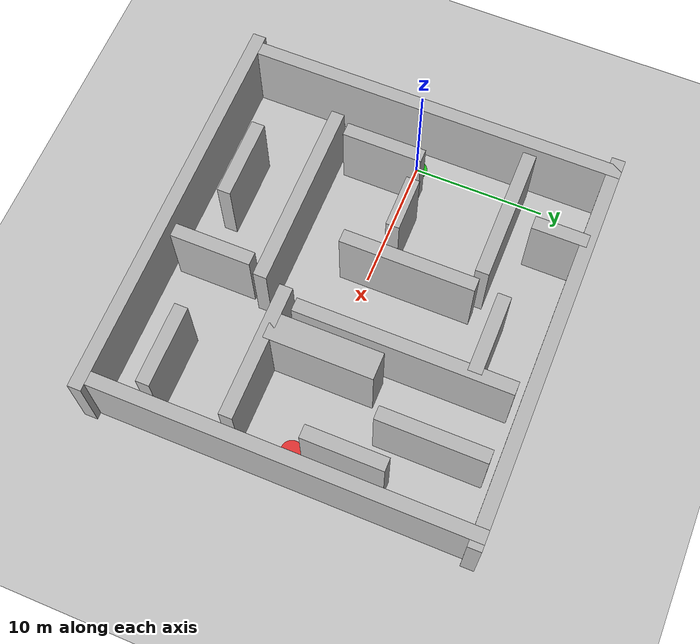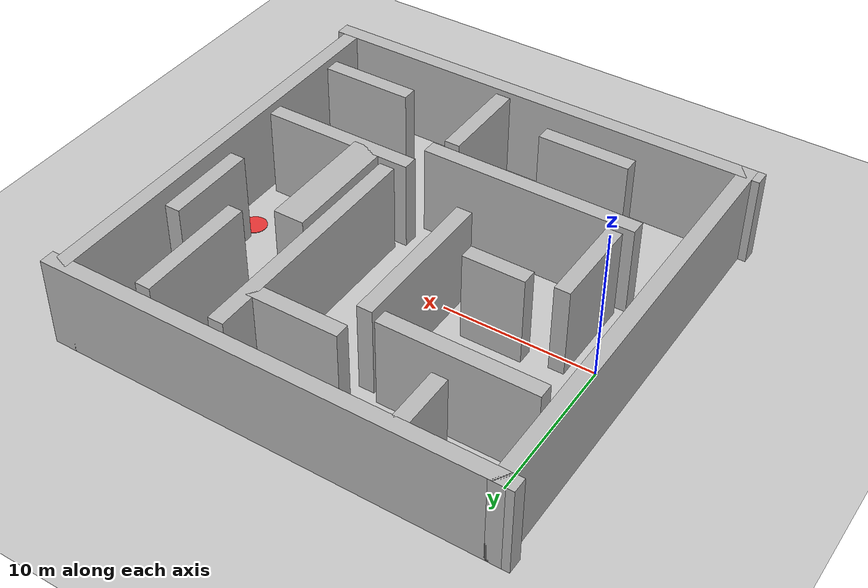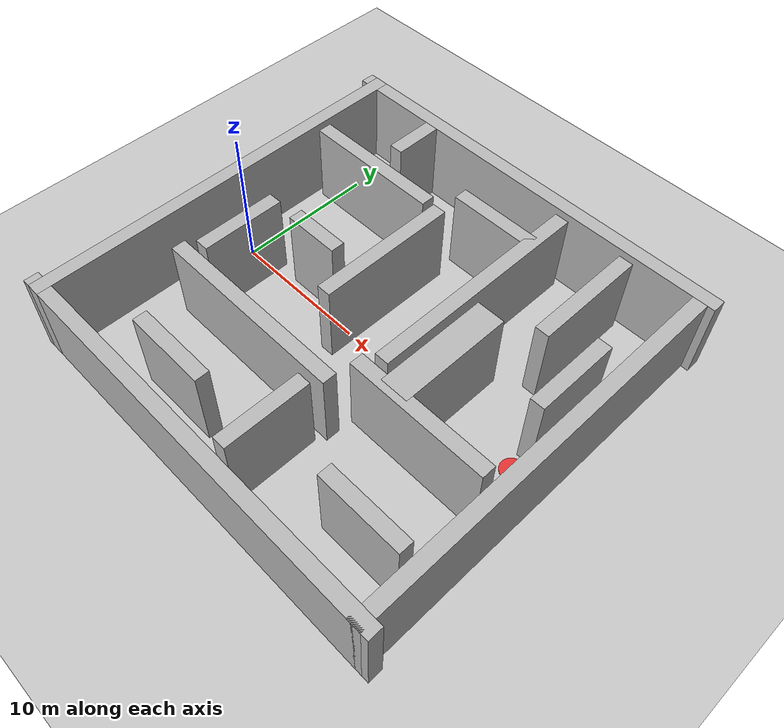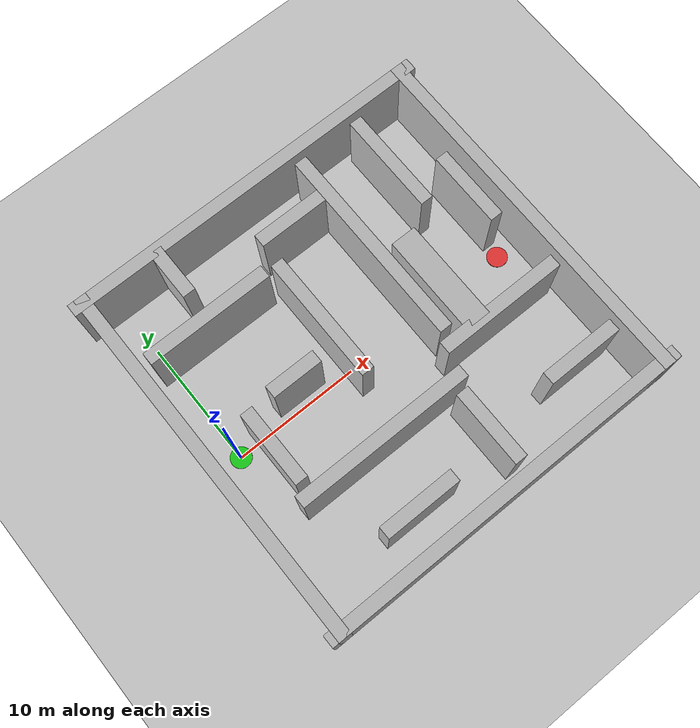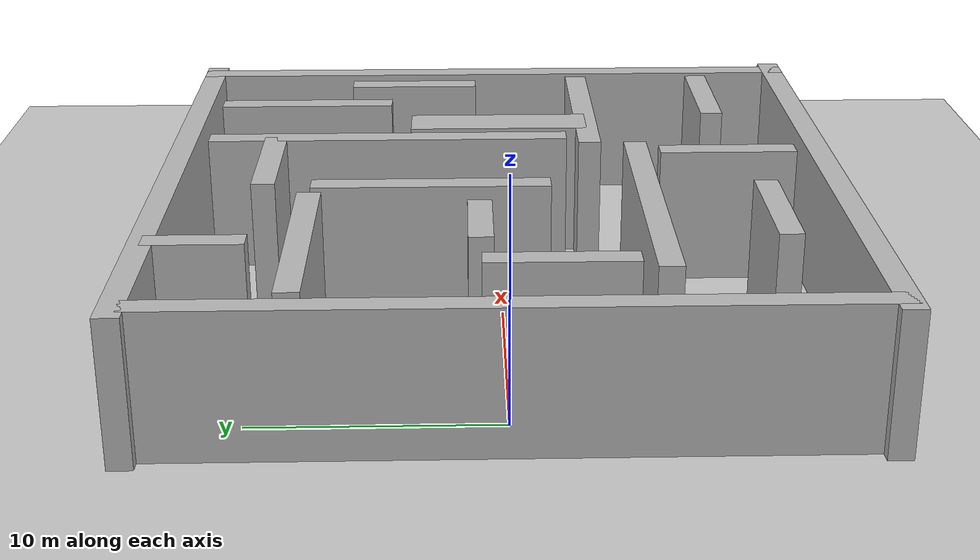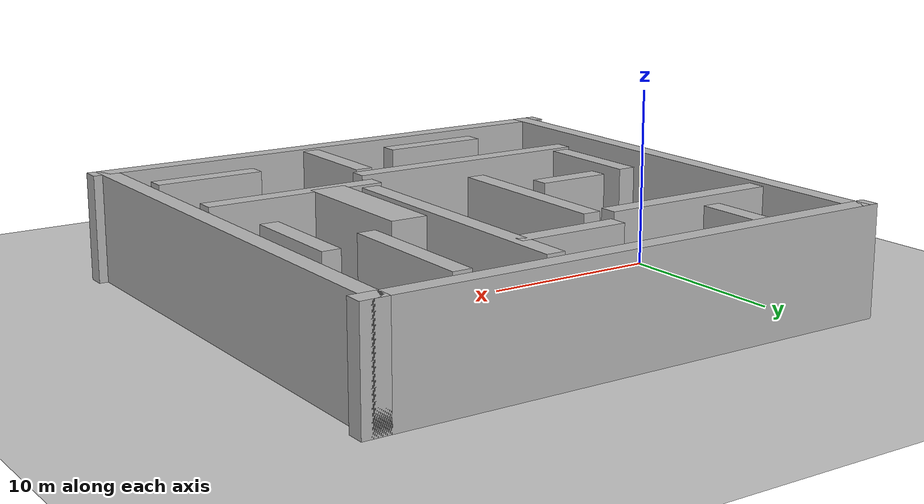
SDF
<?xml version="1.0" encoding="UTF-8"?>
<sdf version="1.9">
  <world name="maze">
    <physics type="ode">
      <max_step_size>0.01</max_step_size>
      <real_time_factor>1.0</real_time_factor>
      <real_time_update_rate>100</real_time_update_rate>
    </physics>
    <gravity>0 0 -9.8</gravity>
    <magnetic_field>6e-06 2.3e-05 -4.2e-05</magnetic_field>
    <atmosphere type="adiabatic"/>

    <scene>
      <grid>false</grid>
      <ambient>0.45 0.45 0.45 1</ambient>
      <background>0.7 0.7 0.7 1</background>
      <shadows>false</shadows>
    </scene>

    <light name="sun" type="directional">
      <pose>0 0 300 0 0 0</pose>
      <cast_shadows>true</cast_shadows>
      <intensity>1.0</intensity>
      <direction>0.2 0.5 -0.84</direction>
      <diffuse>0.9 0.9 0.9 1</diffuse>
      <specular>0.2 0.2 0.2 1</specular>
      <attenuation>
        <range>2000</range>
        <constant>1</constant>
        <linear>0</linear>
        <quadratic>0</quadratic>
      </attenuation>
    </light>

    <spherical_coordinates>
      <surface_model>EARTH_WGS84</surface_model>
      <world_frame_orientation>ENU</world_frame_orientation>
      <latitude_deg>47.397971057728974</latitude_deg>
      <longitude_deg>8.546163739800146</longitude_deg>
      <elevation>0</elevation>
    </spherical_coordinates>

    <model name="ground_plane">
      <static>true</static>
      <link name="link">
        <collision name="collision">
          <geometry>
            <plane>
              <normal>0 0 1</normal>
              <size>120 120</size>
            </plane>
          </geometry>
        </collision>
        <visual name="visual">
          <geometry>
            <plane>
              <normal>0 0 1</normal>
              <size>120 120</size>
            </plane>
          </geometry>
          <material>
            <ambient>0.78 0.78 0.78 1</ambient>
            <diffuse>0.78 0.78 0.78 1</diffuse>
            <specular>0.2 0.2 0.2 1</specular>
          </material>
        </visual>
      </link>
    </model>

    <!-- Start marker -->
    <model name="start_marker">
      <static>true</static>
      <pose>0 0 0.02 0 0 0</pose>
      <link name="link">
        <visual name="visual">
          <geometry>
            <cylinder>
              <radius>0.8</radius>
              <length>0.04</length>
            </cylinder>
          </geometry>
          <material>
            <ambient>0.1 0.8 0.1 1</ambient>
            <diffuse>0.1 0.8 0.1 1</diffuse>
          </material>
        </visual>
      </link>
    </model>

    <!-- Goal marker -->
    <model name="goal_marker">
      <static>true</static>
      <pose>24 0 0.02 0 0 0</pose>
      <link name="link">
        <visual name="visual">
          <geometry>
            <cylinder>
              <radius>0.8</radius>
              <length>0.04</length>
            </cylinder>
          </geometry>
          <material>
            <ambient>0.9 0.2 0.2 1</ambient>
            <diffuse>0.9 0.2 0.2 1</diffuse>
          </material>
        </visual>
      </link>
    </model>

    <!-- Maze walls (all static boxes, 6 m high) -->
    <!-- Outer boundary -->
    <model name="wall_outer_n">
      <static>true</static>
      <pose>12 14 3 0 0 0</pose>
      <link name="link"><collision name="c"><geometry><box><size>30 1 6</size></box></geometry></collision><visual name="v"><geometry><box><size>30 1 6</size></box></geometry></visual></link>
    </model>
    <model name="wall_outer_s">
      <static>true</static>
      <pose>12 -14 3 0 0 0</pose>
      <link name="link"><collision name="c"><geometry><box><size>30 1 6</size></box></geometry></collision><visual name="v"><geometry><box><size>30 1 6</size></box></geometry></visual></link>
    </model>
    <model name="wall_outer_w">
      <static>true</static>
      <pose>-2 0 3 0 0 0</pose>
      <link name="link"><collision name="c"><geometry><box><size>1 29 6</size></box></geometry></collision><visual name="v"><geometry><box><size>1 29 6</size></box></geometry></visual></link>
    </model>
    <model name="wall_outer_e">
      <static>true</static>
      <pose>26 0 3 0 0 0</pose>
      <link name="link"><collision name="c"><geometry><box><size>1 29 6</size></box></geometry></collision><visual name="v"><geometry><box><size>1 29 6</size></box></geometry></visual></link>
    </model>

    <!-- Long corridor walls -->
    <model name="wall_a">
      <static>true</static>
      <pose>4 8 3 0 0 0</pose>
      <link name="link"><collision name="c"><geometry><box><size>10 1 6</size></box></geometry></collision><visual name="v"><geometry><box><size>10 1 6</size></box></geometry></visual></link>
    </model>
    <model name="wall_b">
      <static>true</static>
      <pose>10 3 3 0 0 0</pose>
      <link name="link"><collision name="c"><geometry><box><size>1 10 6</size></box></geometry></collision><visual name="v"><geometry><box><size>1 10 6</size></box></geometry></visual></link>
    </model>
    <model name="wall_c">
      <static>true</static>
      <pose>8 -6 3 0 0 0</pose>
      <link name="link"><collision name="c"><geometry><box><size>14 1 6</size></box></geometry></collision><visual name="v"><geometry><box><size>14 1 6</size></box></geometry></visual></link>
    </model>
    <model name="wall_d">
      <static>true</static>
      <pose>16 5 3 0 0 0</pose>
      <link name="link"><collision name="c"><geometry><box><size>1 16 6</size></box></geometry></collision><visual name="v"><geometry><box><size>1 16 6</size></box></geometry></visual></link>
    </model>
    <model name="wall_e">
      <static>true</static>
      <pose>20 -4 3 0 0 0</pose>
      <link name="link"><collision name="c"><geometry><box><size>10 1 6</size></box></geometry></collision><visual name="v"><geometry><box><size>10 1 6</size></box></geometry></visual></link>
    </model>

    <!-- Chicanes and dead-ends -->
    <model name="wall_f">
      <static>true</static>
      <pose>2 -2 3 0 0 0</pose>
      <link name="link"><collision name="c"><geometry><box><size>1 6 6</size></box></geometry></collision><visual name="v"><geometry><box><size>1 6 6</size></box></geometry></visual></link>
    </model>
    <model name="wall_g">
      <static>true</static>
      <pose>6 1 3 0 0 0</pose>
      <link name="link"><collision name="c"><geometry><box><size>4 1 6</size></box></geometry></collision><visual name="v"><geometry><box><size>4 1 6</size></box></geometry></visual></link>
    </model>
    <model name="wall_h">
      <static>true</static>
      <pose>13 10 3 0 0 0</pose>
      <link name="link"><collision name="c"><geometry><box><size>6 1 6</size></box></geometry></collision><visual name="v"><geometry><box><size>6 1 6</size></box></geometry></visual></link>
    </model>
    <model name="wall_i">
      <static>true</static>
      <pose>21 9 3 0 0 0</pose>
      <link name="link"><collision name="c"><geometry><box><size>1 8 6</size></box></geometry></collision><visual name="v"><geometry><box><size>1 8 6</size></box></geometry></visual></link>
    </model>
    <model name="wall_j">
      <static>true</static>
      <pose>22 -10 3 0 0 0</pose>
      <link name="link"><collision name="c"><geometry><box><size>6 1 6</size></box></geometry></collision><visual name="v"><geometry><box><size>6 1 6</size></box></geometry></visual></link>
    </model>
    <model name="wall_k">
      <static>true</static>
      <pose>14 -10 3 0 0 0</pose>
      <link name="link"><collision name="c"><geometry><box><size>1 6 6</size></box></geometry></collision><visual name="v"><geometry><box><size>1 6 6</size></box></geometry></visual></link>
    </model>
    <model name="wall_l">
      <static>true</static>
      <pose>4 12 3 0 0 0</pose>
      <link name="link"><collision name="c"><geometry><box><size>1 4 6</size></box></geometry></collision><visual name="v"><geometry><box><size>1 4 6</size></box></geometry></visual></link>
    </model>
    <model name="wall_m">
      <static>true</static>
      <pose>18 0 3 0 0 0</pose>
      <link name="link"><collision name="c"><geometry><box><size>2 8 6</size></box></geometry></collision><visual name="v"><geometry><box><size>2 8 6</size></box></geometry></visual></link>
    </model>
    <model name="wall_n">
      <static>true</static>
      <pose>7 -11 3 0 0 0</pose>
      <link name="link"><collision name="c"><geometry><box><size>6 1 6</size></box></geometry></collision><visual name="v"><geometry><box><size>6 1 6</size></box></geometry></visual></link>
    </model>
    <model name="wall_o">
      <static>true</static>
      <pose>24 4 3 0 0 0</pose>
      <link name="link"><collision name="c"><geometry><box><size>1 6 6</size></box></geometry></collision><visual name="v"><geometry><box><size>1 6 6</size></box></geometry></visual></link>
    </model>

  </world>
</sdf>
